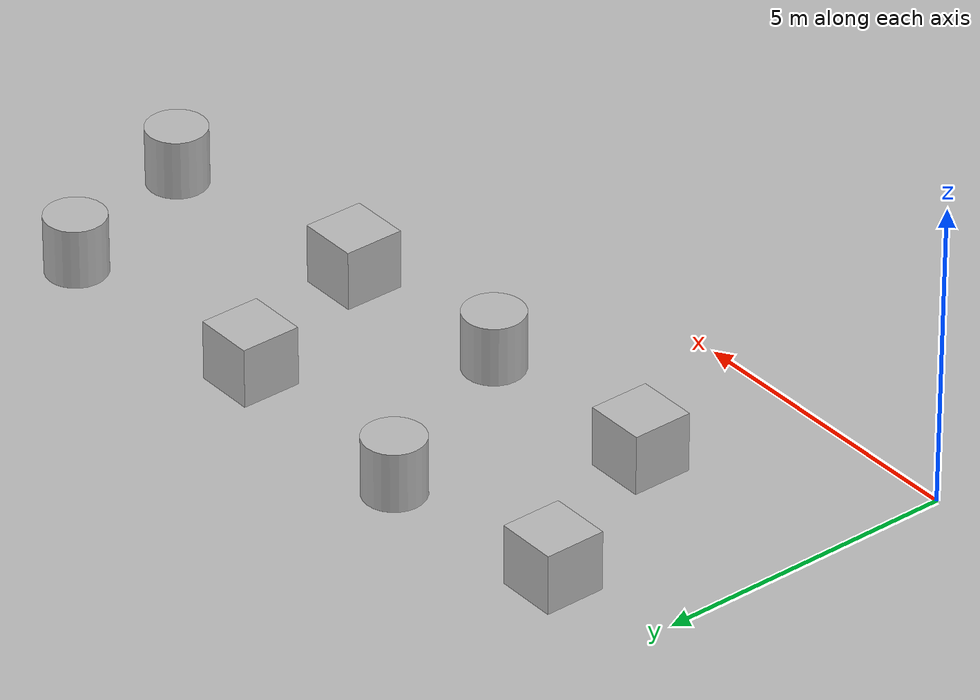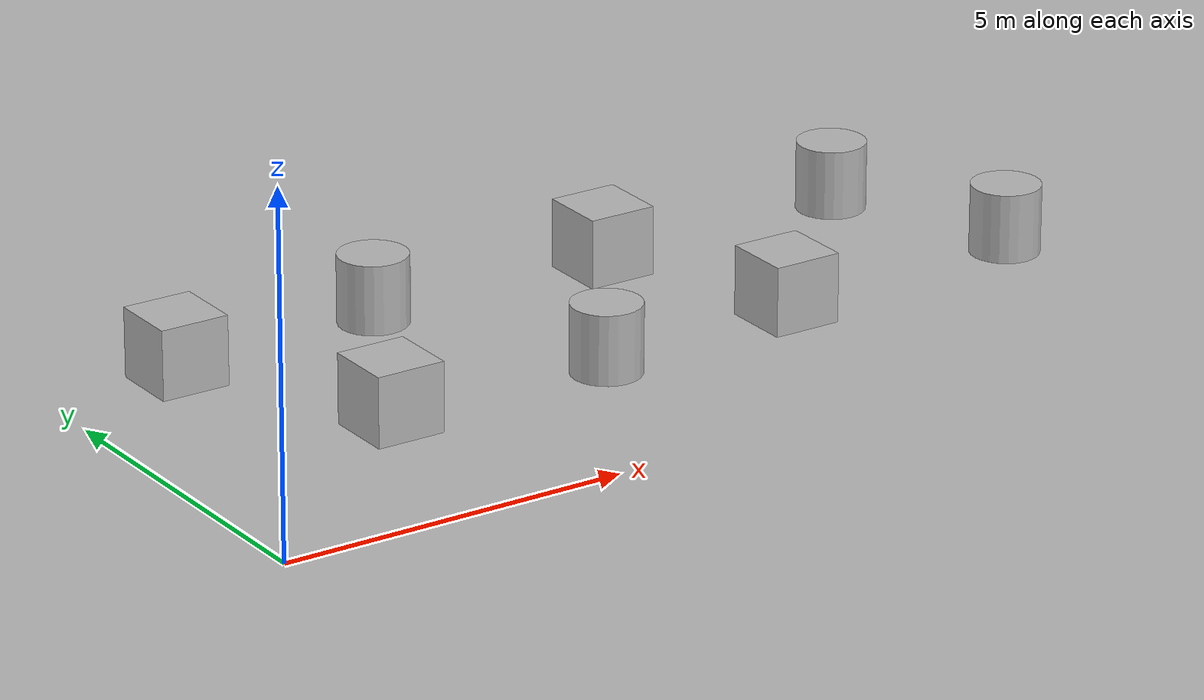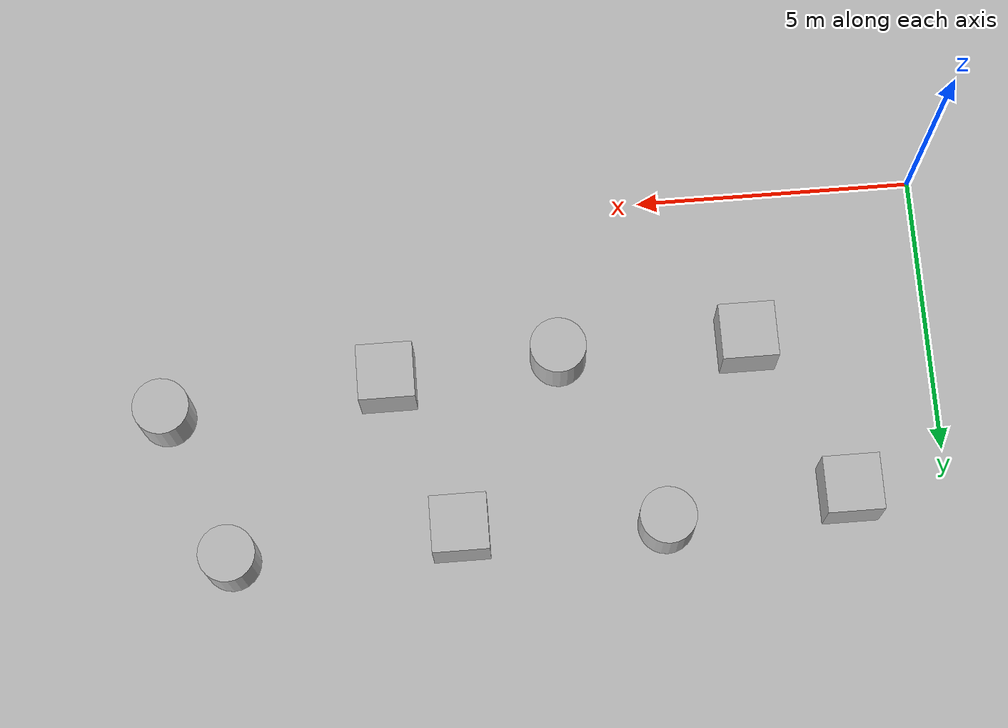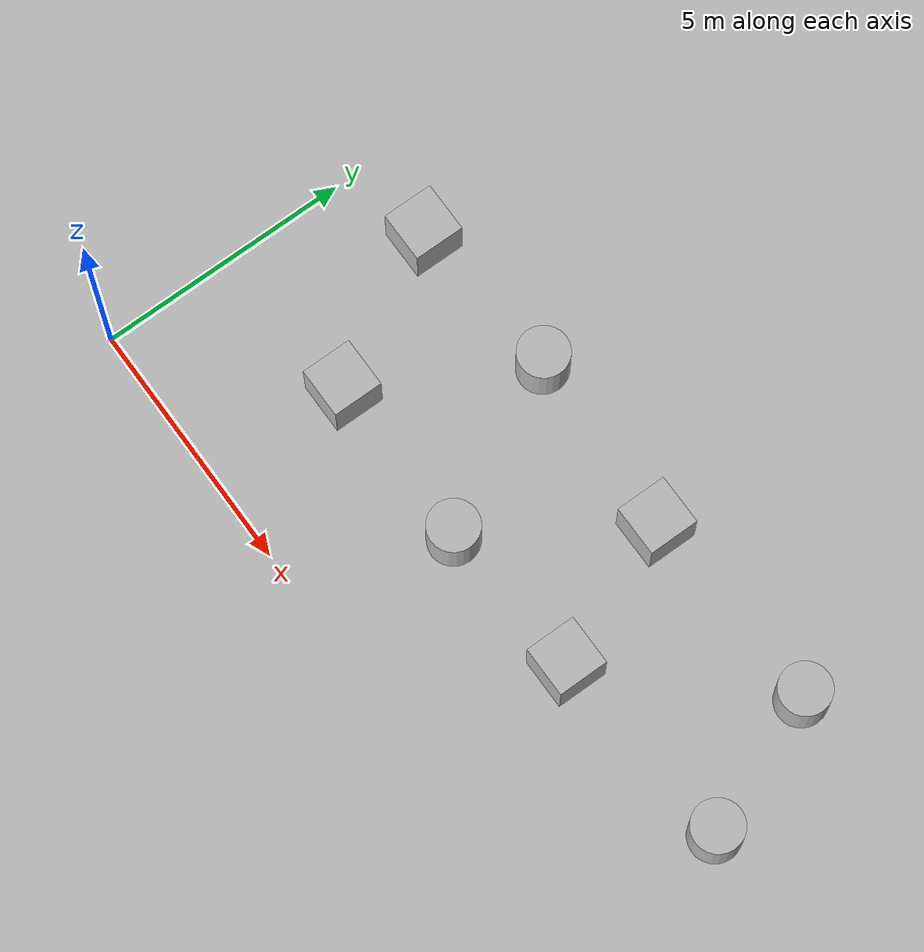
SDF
<sdf version="1.4">
 <world name="default">
  <include><uri>model://ground_plane</uri></include>
  <include><uri>model://sun</uri></include>
  <model name="my_mesh">
   <static>true</static>
   <link name="body">
    <collision name="geom"><geometry><mesh><uri>file://pasto1.dae</uri></mesh></geometry></collision>
    <visual name="visual"><geometry><mesh><uri>file://pasto1.dae</uri></mesh></geometry></visual>
   </link>
   <link name="Box1">
    <pose>1.788620 5.703180 0.523794 .0 .0 .0</pose>
    <inertial><mass>0.1</mass></inertial>
    <collision name="Box1_collision"><geometry><box><size>1 1 1</size></box></geometry></collision>
    <visual name="Box1_visual"><geometry><box><size>1 1 1</size></box></geometry></visual>
   </link>
   <link name="Box2">
    <pose>3.319455 2.818899 0.523194 .0 .0 .0</pose>
    <inertial><mass>0.1</mass></inertial>
    <collision name="Box2_collision"><geometry><box><size>1 1 1</size></box></geometry></collision>
    <visual name="Box2_visual"><geometry><box><size>1 1 1</size></box></geometry></visual>
   </link>
   <link name="Box3">
    <pose>8.651100 5.856800 0.523794 .0 .0 .0</pose>
    <inertial><mass>0.1</mass></inertial>
    <collision name="Box3_collision"><geometry><box><size>1 1 1</size></box></geometry></collision>
    <visual name="Box3_visual"><geometry><box><size>1 1 1</size></box></geometry></visual>
   </link>
   <link name="Box4">
    <pose>9.761980 3.056350 0.523794 .0 .0 .0</pose>
    <inertial><mass>0.1</mass></inertial>
    <collision name="Box4_collision"><geometry><box><size>1 1 1</size></box></geometry></collision>
    <visual name="Box4_visual"><geometry><box><size>1 1 1</size></box></geometry></visual>
   </link>
   <link name="Cilindro1">
    <pose>5.036769 6.013770 0.523786 0 0 0</pose>
    <collision name="collision">
     <geometry><cylinder><radius>0.5</radius><length>1</length></cylinder></geometry>
    </collision>
    <visual name="visual">
     <geometry><cylinder><radius>0.5</radius><length>1</length></cylinder></geometry>
    </visual>
   </link>
   <link name="Cilindro2">
    <pose>6.690776 2.833879 0.523786 0 0 0</pose>
    <collision name="collision">
     <geometry><cylinder><radius>0.5</radius><length>1</length></cylinder></geometry>
    </collision>
    <visual name="visual">
     <geometry><cylinder><radius>0.5</radius><length>1</length></cylinder></geometry>
    </visual>
   </link>
   <link name="Cilindro3">
    <pose>12.673001 6.079822 0.523786 0 0 0</pose>
    <collision name="collision">
     <geometry><cylinder><radius>0.5</radius><length>1</length></cylinder></geometry>
    </collision>
    <visual name="visual">
     <geometry><cylinder><radius>0.5</radius><length>1</length></cylinder></geometry>
    </visual>
   </link>
   <link name="Cilindro4">
    <pose>13.713800 3.392280 0.523786 0 0 0</pose>
    <collision name="collision">
     <geometry><cylinder><radius>0.5</radius><length>1</length></cylinder></geometry>
    </collision>
    <visual name="visual">
     <geometry><cylinder><radius>0.5</radius><length>1</length></cylinder></geometry>
    </visual>
   </link>
  </model>
 </world>
</sdf>
